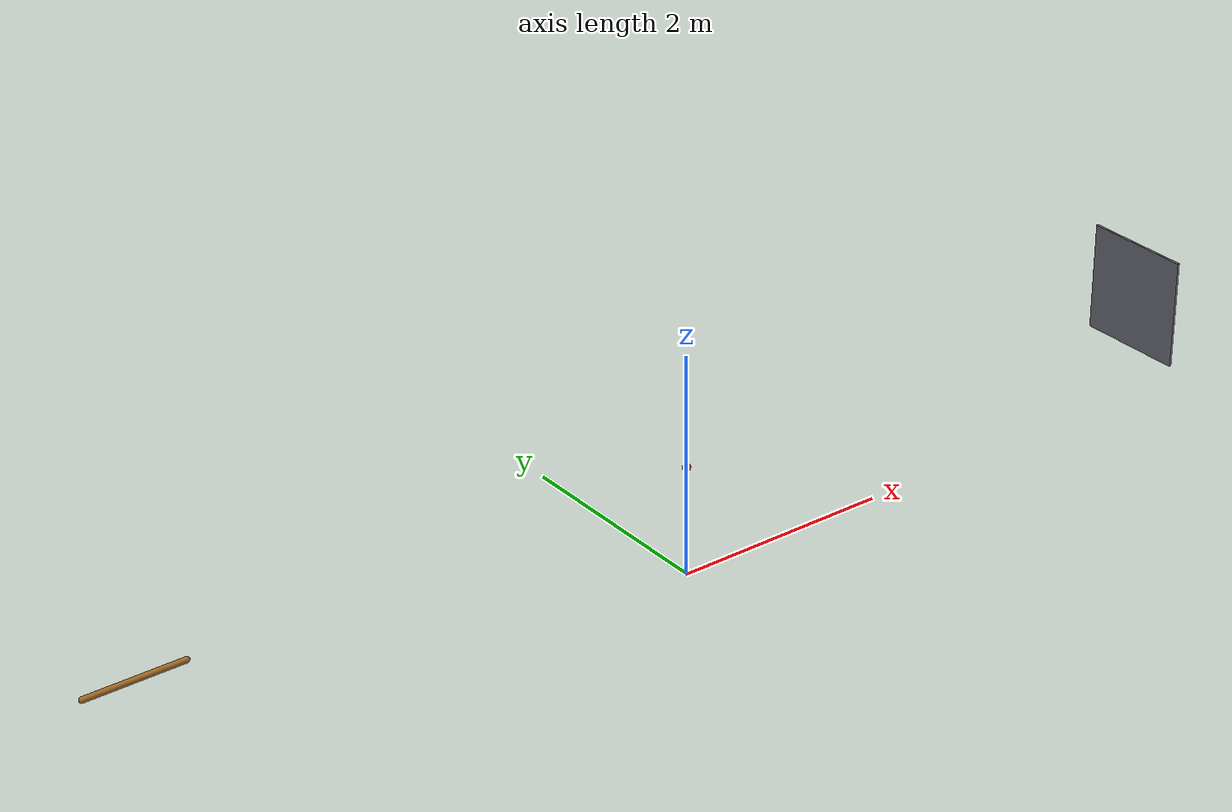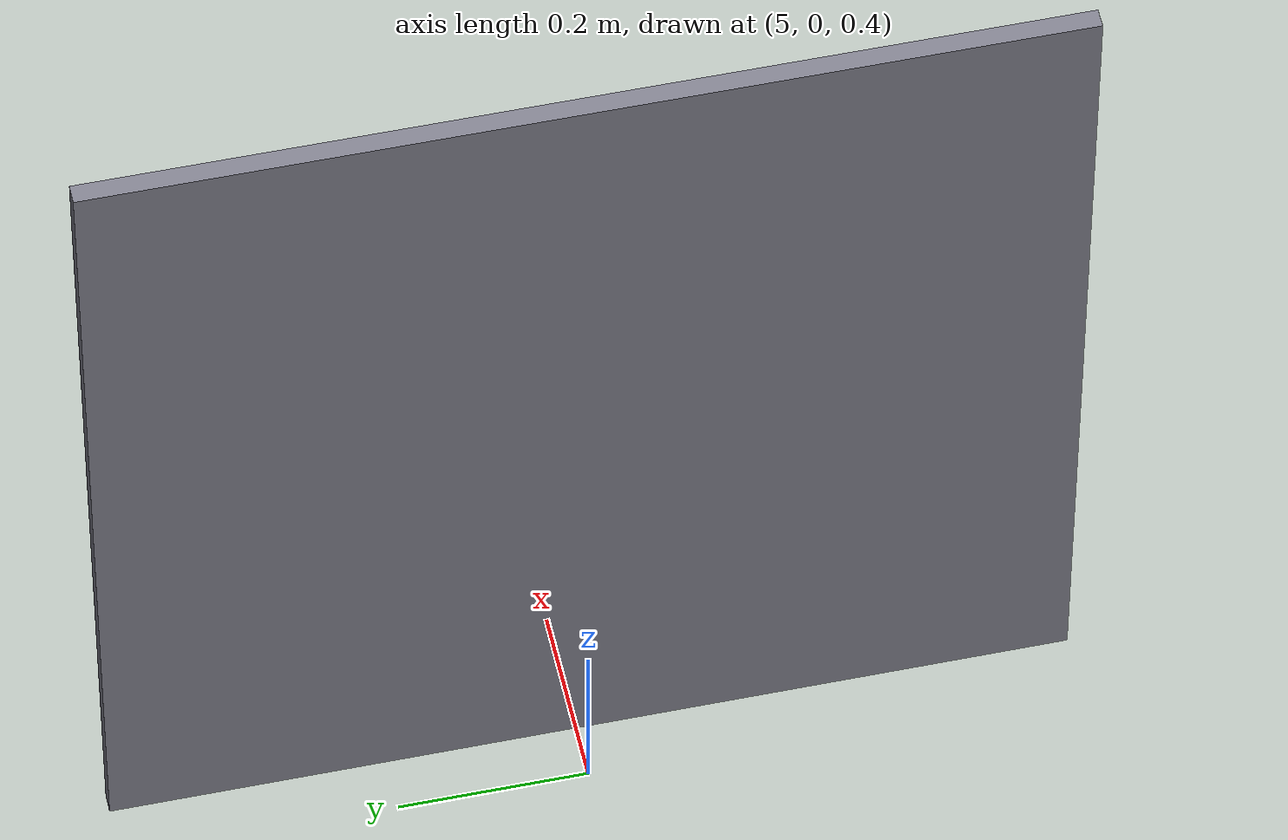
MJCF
<mujoco model="contact_validation_p1">
  <compiler angle="radian"/>
  <option timestep="0.00025" gravity="0 0 -9.81" integrator="RK4"/>

  <default>
    <geom condim="3" friction="0.8 0.02 0.001" solref="0.01 1" solimp="0.9 0.95 0.001"/>
  </default>

  <asset>
    <material name="ball_mat" rgba="0.95 0.18 0.18 1"/>
    <material name="bat_mat" rgba="0.6 0.4 0.15 1"/>
    <material name="plate_mat" rgba="0.5 0.5 0.55 1"/>
  </asset>

  <worldbody>
    <light pos="0 0 5" dir="0 0 -1"/>

    <body name="fixed_plate_body" pos="5 0 1">
      <geom name="fixed_plate" type="box" size="0.01 0.5 0.5" material="plate_mat"/>
    </body>

    <body name="free_bat_body" pos="-5 0 1">
      <joint name="free_bat_joint" type="free"/>
      <geom name="free_bat" type="capsule" fromto="-0.425 0 0 0.425 0 0" size="0.025" mass="0.9" material="bat_mat"/>
    </body>

    <body name="ball" pos="0 0 1">
      <joint name="ball_free" type="free" damping="0" armature="0"/>
      <geom name="ball_geom" type="sphere" size="0.0366" mass="0.145" material="ball_mat"
            solref="0.0002 0.01" solimp="0.9 0.95 0.0001 0.5 2"/>
    </body>
  </worldbody>
</mujoco>
